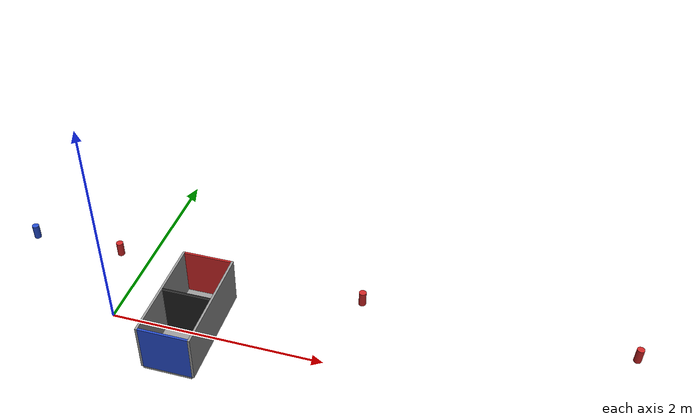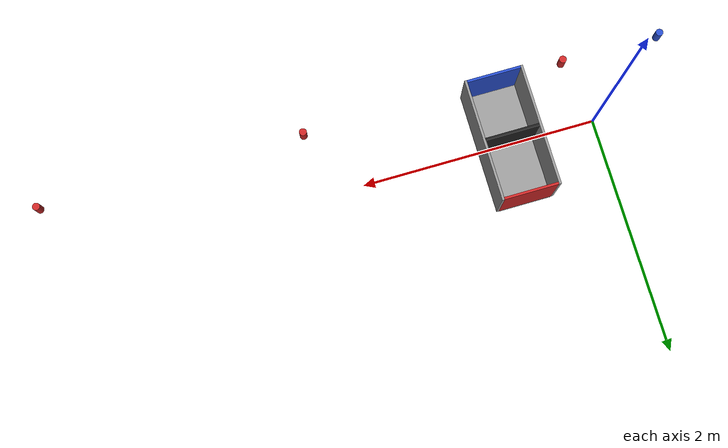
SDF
<sdf version="1.6">
 <world name="default">
  <gravity>0 0 -9.8</gravity>
  <magnetic_field>6e-06 2.3e-05 -4.2e-05</magnetic_field>
  <atmosphere type="adiabatic"/>
  <physics name="default_physics" default="0" type="ode">
   <max_step_size>0.001</max_step_size>
   <real_time_factor>1</real_time_factor>
   <real_time_update_rate>1000</real_time_update_rate>
  </physics>
  <scene><ambient>0.4 0.4 0.4 1</ambient><background>0.7 0.7 0.7 1</background><shadows>1</shadows></scene>
  <spherical_coordinates>
   <surface_model>EARTH_WGS84</surface_model>
   <latitude_deg>0</latitude_deg>
   <longitude_deg>0</longitude_deg>
   <elevation>0</elevation>
   <heading_deg>0</heading_deg>
  </spherical_coordinates>
  <light name="sun" type="directional">
   <pose>-11.8208 -19.3843 17.2198 0 0 0</pose>
   <diffuse>0.7 0.7 0.7 1</diffuse>
   <specular>0.2 0.2 0.2 1</specular>
   <direction>0.3698 0.4 -0.5</direction>
   <attenuation>
    <range>1000</range>
    <constant>0.9</constant>
    <linear>0.01</linear>
    <quadratic>0.001</quadratic>
   </attenuation>
  </light>
  <model name="BLUE_cylinder">
   <pose>-0.37797 -0.25321 1.12015 0 0 0</pose>
   <static>0</static>
   <link name="BLUE_cylinder::link">
    <inertial>
     <mass>0.1</mass>
     <inertia>
      <ixx>0.000129</ixx>
      <ixy>0</ixy>
      <ixz>0</ixz>
      <iyy>0.000129</iyy>
      <iyz>0</iyz>
      <izz>3.78e-05</izz>
     </inertia>
    </inertial>
    <collision name="collision">
     <geometry><cylinder><radius>0.0275</radius><length>0.115</length></cylinder></geometry>
    </collision>
    <visual name="visual">
     <geometry><cylinder><radius>0.0275</radius><length>0.115</length></cylinder></geometry>
     <material>
      <script><uri>file://media/materials/scripts/gazebo.material</uri><name>Gazebo/Blue</name></script>
     </material>
    </visual>
   </link>
  </model>
  <model name="RED_cylinder1">
   <static>0</static>
   <link name="RED_cylinder::link">
    <inertial>
     <mass>0.1</mass>
     <inertia>
      <ixx>0.000129</ixx>
      <ixy>0</ixy>
      <ixz>0</ixz>
      <iyy>0.000129</iyy>
      <iyz>0</iyz>
      <izz>3.78e-05</izz>
     </inertia>
    </inertial>
    <collision name="collision">
     <geometry><cylinder><radius>0.0275</radius><length>0.115</length></cylinder></geometry>
    </collision>
    <visual name="visual">
     <geometry><cylinder><radius>0.0275</radius><length>0.115</length></cylinder></geometry>
     <material>
      <script><uri>file://media/materials/scripts/gazebo.material</uri><name>Gazebo/Red</name></script>
     </material>
    </visual>
   </link>
   <pose>0.37797 -0.25321 1.12015 0 0 0</pose>
  </model>
  <model name="RED_cylinder2">
   <static>0</static>
   <link name="RED_cylinder::link">
    <pose>2.0 0 0 0 0 0</pose>
    <inertial>
     <mass>0.1</mass>
     <inertia>
      <ixx>0.000129</ixx>
      <ixy>0</ixy>
      <ixz>0</ixz>
      <iyy>0.000129</iyy>
      <iyz>0</iyz>
      <izz>3.78e-05</izz>
     </inertia>
    </inertial>
    <collision name="collision">
     <geometry><cylinder><radius>0.0275</radius><length>0.115</length></cylinder></geometry>
    </collision>
    <visual name="visual">
     <geometry><cylinder><radius>0.0275</radius><length>0.115</length></cylinder></geometry>
     <material>
      <script><uri>file://media/materials/scripts/gazebo.material</uri><name>Gazebo/Red</name></script>
     </material>
    </visual>
   </link>
   <pose>0.37797 -0.25321 1.12015 0 0 0</pose>
  </model>
  <model name="RED_cylinder3">
   <static>0</static>
   <link name="RED_cylinder::link">
    <pose>4.0 0 0 0 0 0</pose>
    <inertial>
     <mass>0.1</mass>
     <inertia>
      <ixx>0.000129</ixx>
      <ixy>0</ixy>
      <ixz>0</ixz>
      <iyy>0.000129</iyy>
      <iyz>0</iyz>
      <izz>3.78e-05</izz>
     </inertia>
    </inertial>
    <collision name="collision">
     <geometry><cylinder><radius>0.0275</radius><length>0.115</length></cylinder></geometry>
    </collision>
    <visual name="visual">
     <geometry><cylinder><radius>0.0275</radius><length>0.115</length></cylinder></geometry>
     <material>
      <script><uri>file://media/materials/scripts/gazebo.material</uri><name>Gazebo/Red</name></script>
     </material>
    </visual>
   </link>
   <pose>0.37797 -0.25321 1.12015 0 0 0</pose>
  </model>
  <model name="container">
   <pose>0.765 -0.5 0.251 -0.785398 1.56967 0.785398</pose>
   <static>1</static>
   <link name="container_bottom_plate">
    <inertial>
     <pose>0 0 -1 0 0 0</pose>
     <inertia><ixx>2.579</ixx><ixy>0</ixy><ixz>0</ixz><iyy>2.579</iyy><iyz>0</iyz><izz>0.84</izz></inertia>
     <mass>25</mass>
    </inertial>
    <collision name="container_bottom_plate_geom">
     <pose>0 0 0.01 0 0 0</pose>
     <geometry><box><size>0.45 0.45 0.02</size></box></geometry>
    </collision>
    <visual name="container_bottom_plate_geom_visual">
     <pose>0 0 0.01 0 0 0</pose>
     <geometry><box><size>0.45 0.45 0.02</size></box></geometry>
     <material>
      <script><uri>file://media/materials/scripts/gazebo.material</uri><name>Gazebo/Blue</name></script>
     </material>
    </visual>
    <collision name="container_bottom_plate_geom_container_back_plate">
     <pose>0.235 0 0.51 0 0 0</pose>
     <geometry><box><size>0.02 0.45 1.02</size></box></geometry>
    </collision>
    <visual name="container_bottom_plate_geom_container_back_plate_visual">
     <pose>0.235 0 0.51 0 0 0</pose>
     <geometry><box><size>0.02 0.45 1.02</size></box></geometry>
     <material>
      <script><uri>file://media/materials/scripts/gazebo.material</uri><name>Gazebo/Grey</name></script>
     </material>
    </visual>
    <collision name="container_bottom_plate_geom_container_left_plate">
     <pose>0 0.235 0.51 0 0 0</pose>
     <geometry><box><size>0.45 0.02 1.02</size></box></geometry>
    </collision>
    <visual name="container_bottom_plate_geom_container_left_plate_visual">
     <pose>0 0.235 0.51 0 0 0</pose>
     <geometry><box><size>0.45 0.02 1.02</size></box></geometry>
     <material>
      <script><uri>file://media/materials/scripts/gazebo.material</uri><name>Gazebo/Grey</name></script>
     </material>
    </visual>
    <collision name="container_bottom_plate_geom_container_middle_plate">
     <pose>0 0 0.51 0 0 0</pose>
     <geometry><box><size>0.45 0.45 0.02</size></box></geometry>
    </collision>
    <visual name="container_bottom_plate_geom_container_middle_plate_visual">
     <pose>0 0 0.51 0 0 0</pose>
     <geometry><box><size>0.45 0.45 0.02</size></box></geometry>
     <material>
      <script><uri>file://media/materials/scripts/gazebo.material</uri><name>Gazebo/Black</name></script>
     </material>
    </visual>
    <collision name="container_bottom_plate_geom_container_right_plate">
     <pose>0 -0.235 0.51 0 0 0</pose>
     <geometry><box><size>0.45 0.02 1.02</size></box></geometry>
    </collision>
    <visual name="container_bottom_plate_geom_container_right_plate_visual">
     <pose>0 -0.235 0.51 0 0 0</pose>
     <geometry><box><size>0.45 0.02 1.02</size></box></geometry>
     <material>
      <script><uri>file://media/materials/scripts/gazebo.material</uri><name>Gazebo/Grey</name></script>
     </material>
    </visual>
    <collision name="container_bottom_plate_geom_container_top_plate">
     <pose>0 0 1.01 0 0 0</pose>
     <geometry><box><size>0.45 0.45 0.02</size></box></geometry>
    </collision>
    <visual name="container_bottom_plate_geom_container_top_plate_visual">
     <pose>0 0 1.01 0 0 0</pose>
     <geometry><box><size>0.45 0.45 0.02</size></box></geometry>
     <material>
      <script><uri>file://media/materials/scripts/gazebo.material</uri><name>Gazebo/Red</name></script>
     </material>
    </visual>
   </link>
  </model>
 </world>
</sdf>
